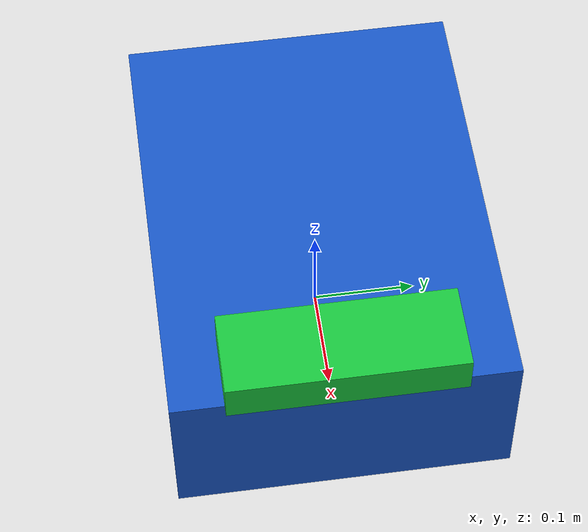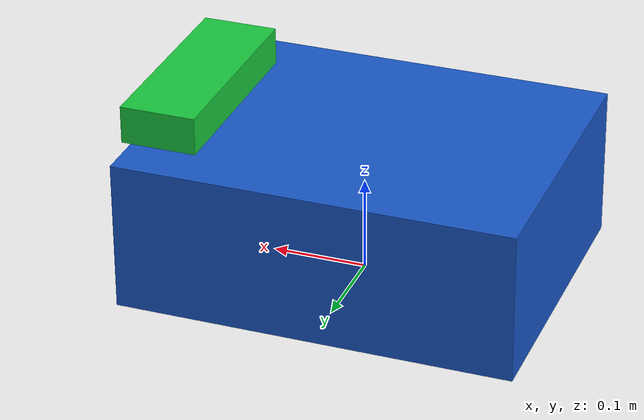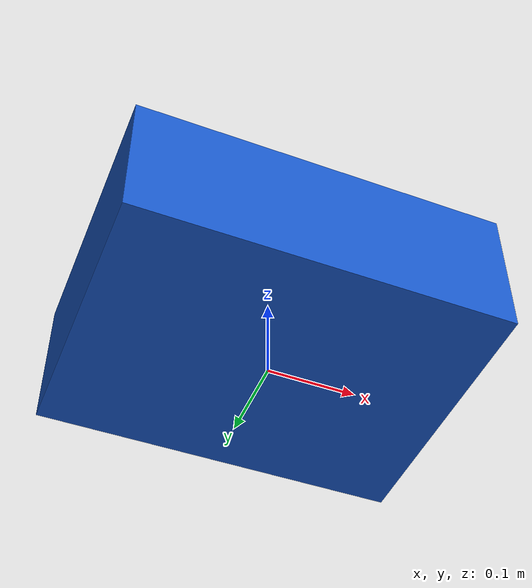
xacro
<?xml version="1.0"?>
<robot name="simple_omni_robot" xmlns:xacro="http://www.ros.org/wiki/xacro">
  <material name="body_blue">
    <color rgba="0.1 0.35 0.8 1.0"/>
  </material>
  <material name="front_green">
    <color rgba="0.1 0.8 0.25 1.0"/>
  </material>

  <link name="base_footprint"/>

  <joint name="base_footprint_joint" type="fixed">
    <parent link="base_footprint"/>
    <child link="base_link"/>
    <origin xyz="0 0 0.08" rpy="0 0 0"/>
  </joint>

  <link name="base_link">
    <visual>
      <origin xyz="0 0 0" rpy="0 0 0"/>
      <geometry>
        <box size="0.42 0.32 0.16"/>
      </geometry>
      <material name="body_blue"/>
    </visual>
    <collision>
      <origin xyz="0 0 0" rpy="0 0 0"/>
      <geometry>
        <box size="0.42 0.32 0.16"/>
      </geometry>
    </collision>
    <inertial>
      <origin xyz="0 0 0" rpy="0 0 0"/>
      <mass value="5.0"/>
      <inertia ixx="0.05" ixy="0.0" ixz="0.0" iyy="0.08" iyz="0.0" izz="0.09"/>
    </inertial>
  </link>

  <link name="front_marker_link">
    <visual>
      <origin xyz="0 0 0" rpy="0 0 0"/>
      <geometry>
        <box size="0.08 0.22 0.04"/>
      </geometry>
      <material name="front_green"/>
    </visual>
  </link>

  <joint name="front_marker_joint" type="fixed">
    <parent link="base_link"/>
    <child link="front_marker_link"/>
    <origin xyz="0.18 0 0.1" rpy="0 0 0"/>
  </joint>
</robot>
